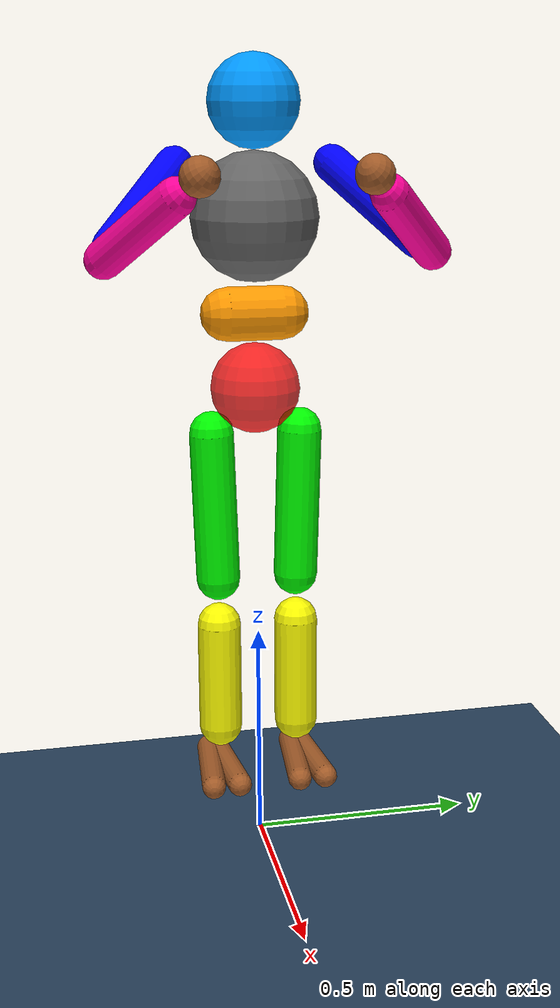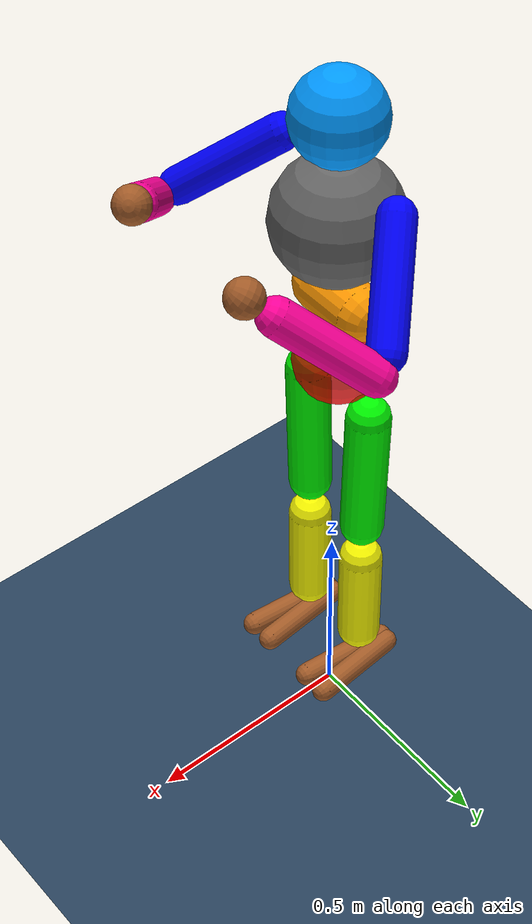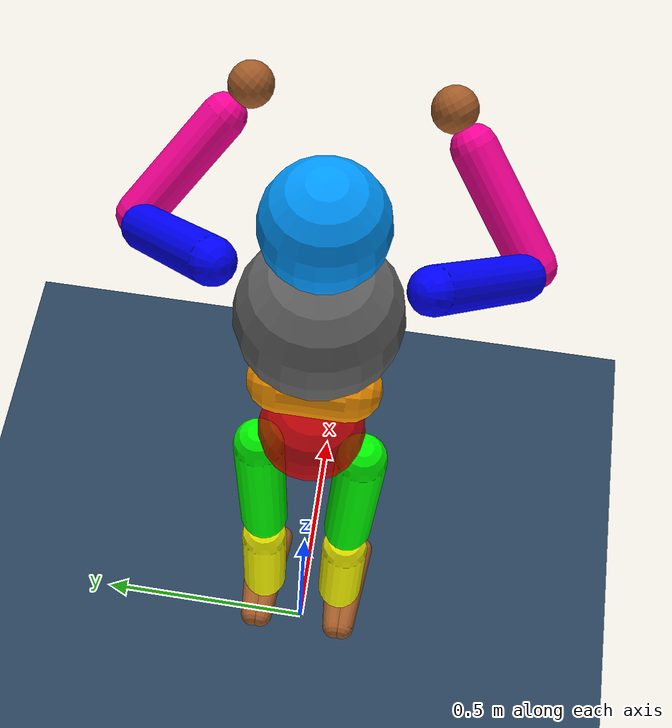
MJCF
<mujoco model="a1">
    <!-- 时间步长为0.005秒 -->
    <option timestep="0.005" />

    <!-- 定义了模型中使用的纹理、材料和其它资源 -->
    <asset>
        <texture type="skybox" builtin="gradient" rgb1=".3 .5 .7" rgb2="0 0 0" width="512"
            height="512" />
        <texture name="body" type="cube" builtin="flat" mark="cross" width="127" height="1278"
            rgb1="0.8 0.6 0.4" rgb2="0.8 0.6 0.4" markrgb="1 1 1" random="0.01" />
        <material name="body" texture="body" texuniform="true" rgba="0.8 0.6 .4 1" />
        <texture name="grid" type="2d" builtin="checker" width="512" height="512" rgb1=".1 .2 .3"
            rgb2=".2 .3 .4" />
        <material name="grid" texture="grid" texrepeat="1 1" texuniform="true" reflectance=".2" />
    </asset>

    <!-- 定义了默认的几何形状、关节和其他元素的属性。 -->
    <default>
        <motor ctrlrange="-1 1" ctrllimited="true" />
        <default class="body">
            <geom type="capsule" condim="1" friction=".7" solimp=".9 .99 .003" solref=".015 1"
                material="body" />
            <joint type="hinge" damping=".2" stiffness="1" armature=".01" limited="true"
                solimplimit="0 .99 .01" />
            <default class="big_joint">
                <joint damping="5" stiffness="10" />
                <default class="big_stiff_joint">
                    <joint stiffness="20" />
                </default>
            </default>
        </default>
    </default>

    <!-- 定义了视觉设置，如渲染质量、阴影大小、全局分辨率等。 -->
    <visual>
        <map force="0.1" zfar="30" />
        <rgba haze="0.15 0.25 0.35 1" />
        <quality shadowsize="4096" />
        <global offwidth="800" offheight="800" />
    </visual>

    <worldbody>
        <geom name="floor" size="0 0 .05" type="plane" material="grid" condim="3" />
        <light name="spotlight" mode="targetbodycom" target="torso"
            diffuse=".8 .8 .8" specular="0.3 0.3 0.3" pos="0 -20 4" cutoff="10" />
        <body name="torso" pos="0 0 1.5" childclass="body">
            <light name="top" pos="0 0 2" mode="trackcom" />
            <camera name="back" pos="-3 0 1" xyaxes="0 -1 0 1 0 2" mode="trackcom" />
            <camera name="side" pos="0 -3 1" xyaxes="1 0 0 0 1 2" mode="trackcom" />
            <freejoint name="root" />
            <geom name="torso" type="sphere" size="0.14" pos="0 0 -0.05" rgba="0.4 0.4 0.4 1" />
            <body name="head" pos="0 0 .19">
                <geom name="head" type="sphere" size="0.1" rgba="0 0.6 1 1" />
                <camera name="egocentric" pos=".09 0 0" xyaxes="0 -1 0 .1 0 1" fovy="80" />
            </body>
            <body name="lower_waist" pos="-.01 0 -.26">
                <geom name="lower_waist" fromto="0 -.06 0 0 .06 0" size=".06" rgba="1 0.6 0 1" />
                <joint name="pelvis_tz" pos="0 0 .065" axis="0 0 1" range="-45 45"
                    class="big_stiff_joint" />
                <joint name="pelvis_ty" pos="0 0 .065" axis="0 1 0" range="-75 30" class="big_joint" />
                <body name="pelvis" pos="0 0 -.165">
                    <joint name="pelvis_tx" pos="0 0 .1" axis="1 0 0" range="-35 35"
                        class="big_joint" />
                    <geom name="butt" type="sphere" size="0.1" rgba="1 0 0 0.8" />
                    <body name="right_thigh" pos="0 -.1 -.1">
                        <joint name="right_hip_x" axis="1 0 0" range="-25 5" class="big_joint" />
                        <joint name="right_hip_z" axis="0 0 1" range="-60 35" class="big_joint" />
                        <joint name="right_hip_y" axis="0 1 0" range="-110 20"
                            class="big_stiff_joint" />
                        <geom name="right_thigh" fromto="0 0 0 0 .01 -.34" size=".05" rgba="0 1 0 1" />
                        <body name="right_shin" pos="0 .01 -.403">
                            <joint name="right_knee" pos="0 0 .02" axis="0 -1 0" range="-160 2" />
                            <geom name="right_shin" fromto="0 0 -.05 0 0 -.3" size=".05"
                                rgba="1 1 0 1" />
                            <body name="right_foot" pos="0 0 -.39">
                                <joint name="right_ankle_y" pos="0 0 .08" axis="0 1 0"
                                    range="-50 50" stiffness="6" />
                                <joint name="right_ankle_x" pos="0 0 .04" axis="1 0 .5"
                                    range="-50 50" stiffness="3" />
                                <geom name="right_right_foot" fromto="-.07 -.02 0 .14 -.04 0"
                                    size=".027" />
                                <geom name="left_right_foot" fromto="-.07 0 0 .14  .02 0"
                                    size=".027" />
                            </body>
                        </body>
                    </body>
                    <body name="left_thigh" pos="0 .1 -.1">
                        <joint name="left_hip_x" axis="-1 0 0" range="-25 5" class="big_joint" />
                        <joint name="left_hip_z" axis="0 0 -1" range="-60 35" class="big_joint" />
                        <joint name="left_hip_y" axis="0 1 0" range="-110 20"
                            class="big_stiff_joint" />
                        <geom name="left_thigh" fromto="0 0 0 0 -.01 -.34" size=".05" rgba="0 1 0 1" />
                        <body name="left_shin" pos="0 -.01 -.403">
                            <joint name="left_knee" pos="0 0 .02" axis="0 -1 0" range="-160 2" />
                            <geom name="left_shin" fromto="0 0 -.05 0 0 -.3" size=".05"
                                rgba="1 1 0 1" />
                            <body name="left_foot" pos="0 0 -.39">
                                <joint name="left_ankle_y" pos="0 0 .08" axis="0 1 0" range="-50 50"
                                    stiffness="6" />
                                <joint name="left_ankle_x" pos="0 0 .04" axis="1 0 .5"
                                    range="-50 50" stiffness="3" />
                                <geom name="left_left_foot" fromto="-.07 .02 0 .14 .04 0"
                                    size=".027" />
                                <geom name="right_left_foot" fromto="-.07 0 0 .14 -.02 0"
                                    size=".027" />
                            </body>
                        </body>
                    </body>
                </body>
            </body>
            <body name="right_upper_arm" pos="0 -.17 .06">
                <joint name="right_shoulder1" axis="2 1 1" range="-85 60" />
                <joint name="right_shoulder2" axis="0 -1 1" range="-85 60" />
                <geom name="right_upper_arm" fromto="0 0 0 .15 -.15 -.15" size=".04 .15"
                    rgba="0 0 1 1" />
                <body name="right_lower_arm" pos=".18 -.18 -.18">
                    <joint name="right_elbow" axis="0 -1 1" range="-90 50" stiffness="0" />
                    <geom name="right_lower_arm" fromto=".01 .01 .01 .14 .14 .14" size=".04"
                        rgba="1 0 0.6 1" />
                    <body name="right_hand" pos=".18 .18 .18">
                        <geom name="right_hand" type="sphere" size=".04" zaxis="1 1 1" />
                    </body>
                </body>
            </body>
            <body name="left_upper_arm" pos="0 .17 .06">
                <joint name="left_shoulder1" axis="2 -1 1" range="-60 85" />
                <joint name="left_shoulder2" axis="0 1 1" range="-60 85" />
                <geom name="left_upper_arm" fromto="0 0 0 .15 .15 -.15" size=".04 .15"
                    rgba="0 0 1 1" />
                <body name="left_lower_arm" pos=".18 .18 -.18">
                    <joint name="left_elbow" axis="0 -1 -1" range="-90 50" stiffness="0" />
                    <geom name="left_lower_arm" fromto=".01 -.01 .01 .14 -.14 .14" size=".04"
                        rgba="1 0 0.6 1" />
                    <body name="left_hand" pos=".18 -.18 .18">
                        <geom name="left_hand" type="sphere" size=".04" zaxis="1 -1 1" />
                    </body>
                </body>
            </body>
        </body>
    </worldbody>

    <actuator>
        <motor name="pelvis_ty_actuator" gear="40" joint="pelvis_ty" />
        <motor name="pelvis_tz_actuator" gear="40" joint="pelvis_tz" />
        <motor name="pelvis_tx_actuator" gear="40" joint="pelvis_tx" />
        <motor name="right_hip_x_actuator" gear="40" joint="right_hip_x" />
        <motor name="right_hip_z_actuator" gear="40" joint="right_hip_z" />
        <motor name="right_hip_y_actuator" gear="120" joint="right_hip_y" />
        <motor name="right_knee_actuator" gear="80" joint="right_knee" />
        <motor name="right_ankle_x_actuator" gear="20" joint="right_ankle_x" />
        <motor name="right_ankle_y_actuator" gear="20" joint="right_ankle_y" />
        <motor name="left_hip_x_actuator" gear="40" joint="left_hip_x" />
        <motor name="left_hip_z_actuator" gear="40" joint="left_hip_z" />
        <motor name="left_hip_y_actuator" gear="120" joint="left_hip_y" />
        <motor name="left_knee_actuator" gear="80" joint="left_knee" />
        <motor name="left_ankle_x_actuator" gear="20" joint="left_ankle_x" />
        <motor name="left_ankle_y_actuator" gear="20" joint="left_ankle_y" />
        <motor name="right_shoulder1_actuator" gear="20" joint="right_shoulder1" />
        <motor name="right_shoulder2_actuator" gear="20" joint="right_shoulder2" />
        <motor name="right_elbow_actuator" gear="40" joint="right_elbow" />
        <motor name="left_shoulder1_actuator" gear="20" joint="left_shoulder1" />
        <motor name="left_shoulder2_actuator" gear="20" joint="left_shoulder2" />
        <motor name="left_elbow_actuator" gear="40" joint="left_elbow" />
    </actuator>
</mujoco>
